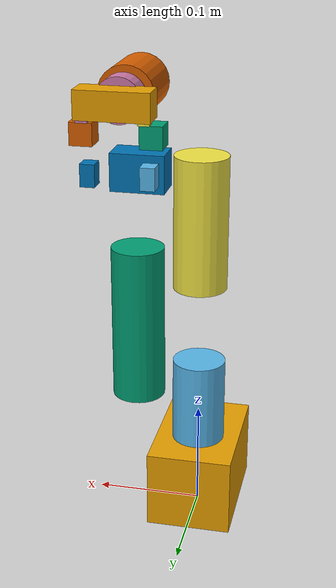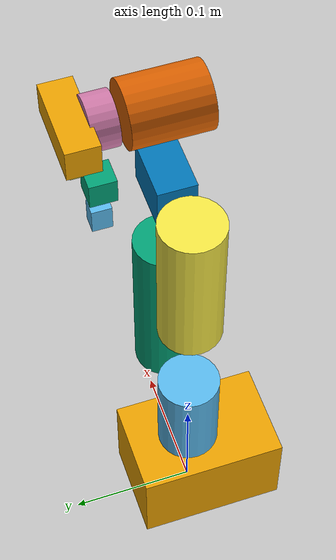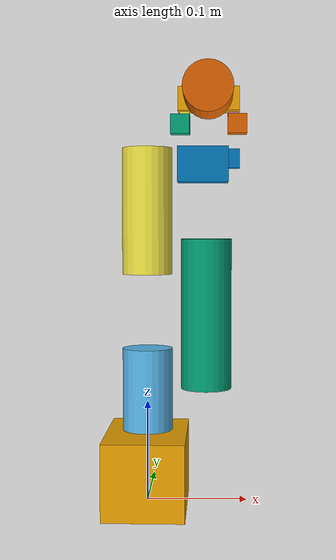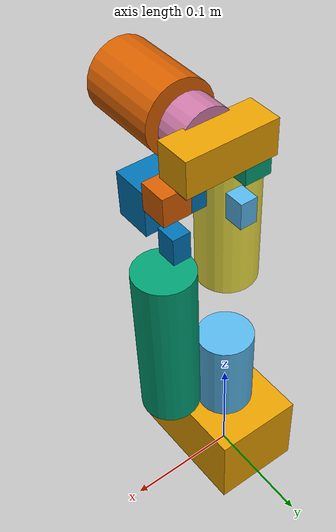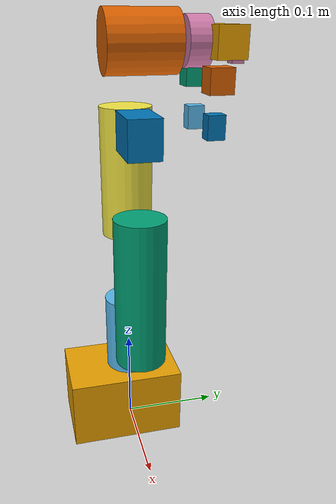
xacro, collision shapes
<?xml version="1.0"?>
<robot xmlns:xacro="http://www.ros.org/wiki/xacro" name="mycobot_280">
    <xacro:arg name="initial_positions_file" default="initial_positions.yaml" />

    <!-- Import mycobot_280 urdf file -->
    <xacro:include filename="$(find mycobot_description)/urdf/mycobot_280_wrapper.xacro" />

    <!-- Import control_xacro -->
    <xacro:include filename="mycobot_280.ros2_control.xacro" />

    <xacro:mycobot_280_ros2_control name="GazeboSystem" initial_positions_file="$(arg initial_positions_file)"/>

    <!-- Gazebo Classic Plugin for ros2_control -->
    <gazebo>
        <plugin filename="libgazebo_ros2_control.so" name="gazebo_ros2_control">
            <parameters>$(find mycobot_moveit_config_new)/config/ros2_controllers.yaml</parameters>
        </plugin>
    </gazebo>

</robot>

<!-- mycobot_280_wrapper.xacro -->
<robot xmlns:xacro="http://www.ros.org/wiki/xacro" name="mycobot_280">

  <xacro:include filename="mycobot_280_urdf.xacro"/>
  <xacro:include filename="/home/anish/ros2_robot_ws/src/mycobot_description/urdf/adaptive_gripper.urdf.xacro"/>

    <xacro:adaptive_gripper parent="flange" prefix="">
  <origin xyz="0 0 0.02" rpy="0 0 0"/>
</xacro:adaptive_gripper>

  <link name="base_link"/>

  <xacro:mycobot_280_arm
    base_link="base_link"
    flange_link="flange"
    prefix="">
    <origin xyz="0 0 0" rpy="0 0 0"/>
  </xacro:mycobot_280_arm>

</robot>

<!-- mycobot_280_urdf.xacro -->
<robot name="mycobot_280" xmlns:xacro="http://www.ros.org/wiki/xacro">

  <xacro:property name="joint_effort" value="56.0"/>
  <xacro:property name="joint_velocity" value="2.792527"/>
  <xacro:property name="joint_damping" value="0.0"/>
  <xacro:property name="joint_friction" value="0.0"/>

  <xacro:property name="link1_mass" value="0.12"/>
  <xacro:property name="link2_mass" value="0.19"/>
  <xacro:property name="link3_mass" value="0.16"/>
  <xacro:property name="link4_mass" value="0.124"/>
  <xacro:property name="link5_mass" value="0.11"/>
  <xacro:property name="link6_mass" value="0.0739"/>
  <xacro:property name="flange_mass" value="0.035"/>

  <xacro:macro name="link_inertial" params="mass ixx iyy izz">
    <inertial>
      <origin xyz="0 0 0.0" rpy="0 0 0"/>
      <mass value="${mass}"/>
      <inertia
        ixx="${ixx}" ixy="0.0" ixz="0.0"
        iyy="${iyy}" iyz="0.0"
        izz="${izz}"/>
    </inertial>
  </xacro:macro>

  <xacro:macro name="material_visual" params="ref_link ambient diffuse specular">
    <gazebo reference="${ref_link}">
      <visual>
        <material>
          <ambient>${ambient}</ambient>
          <diffuse>${diffuse}</diffuse>
          <specular>${specular}</specular>
        </material>
      </visual>
    </gazebo>
  </xacro:macro>

  <xacro:macro name="mycobot_280_arm" params="base_link flange_link prefix *origin">

    <link name="${prefix}link1">
      <xacro:link_inertial mass="${link1_mass}" ixx="0.000148" iyy="0.000148" izz="0.000096"/>
      <visual>
        <geometry>
          <mesh filename="package://mycobot_description/meshes/mycobot_280/visual/link1.dae"/>
        </geometry>
        <origin xyz="0.0 0 0" rpy="0 0 ${-pi/2}"/>
      </visual>
      <collision>
        <geometry>
          <box size="0.08 0.12 0.075"/>
        </geometry>
        <origin xyz="0.0 -0.01 0.034" rpy="0 0 0"/>
      </collision>
    </link>

    <link name="${prefix}link2">
      <xacro:link_inertial mass="${link2_mass}" ixx="0.000148" iyy="0.000148" izz="0.000096"/>
      <visual>
        <geometry>
          <mesh filename="package://mycobot_description/meshes/mycobot_280/visual/link2.dae"/>
        </geometry>
        <origin xyz="0.0 0 -0.06096" rpy="0 0 ${-pi/2}"/>
      </visual>
      <collision>
        <geometry>
          <cylinder radius="0.025" length="0.085"/>
        </geometry>
        <origin xyz="0.0 0 -0.02" rpy="0 0 ${-pi/2}"/>
      </collision>
    </link>

    <link name="${prefix}link3">
      <xacro:link_inertial mass="${link3_mass}" ixx="0.000148" iyy="0.000148" izz="0.000096"/>
      <visual>
        <geometry>
          <mesh filename="package://mycobot_description/meshes/mycobot_280/visual/link3.dae"/>
        </geometry>
        <origin xyz="0.0 0 0.03256" rpy="0 ${-pi/2} 0"/>
      </visual>
      <collision>
        <geometry>
          <cylinder radius="0.025" length="0.15"/>
        </geometry>
        <origin xyz="-0.058 0 0.059" rpy="0 ${-pi/2} 0"/>
      </collision>
    </link>

    <link name="${prefix}link4">
      <xacro:link_inertial mass="${link4_mass}" ixx="0.000103" iyy="0.000103" izz="0.000096"/>
      <visual>
        <geometry>
          <mesh filename="package://mycobot_description/meshes/mycobot_280/visual/link4.dae"/>
        </geometry>
        <origin xyz="0.0 0 0.03056" rpy="0 ${-pi/2} 0"/>
      </visual>
      <collision>
        <geometry>
          <cylinder radius="0.025" length="0.125"/>
        </geometry>
        <origin xyz="-0.05 0 0.0" rpy="0 ${-pi/2} 0"/>
      </collision>
    </link>

    <link name="${prefix}link5">
      <xacro:link_inertial mass="${link5_mass}" ixx="0.000103" iyy="0.000103" izz="0.000096"/>
      <visual>
        <geometry>
          <mesh filename="package://mycobot_description/meshes/mycobot_280/visual/link5.dae"/>
        </geometry>
        <origin xyz="0.0 0 -0.03356" rpy="${-pi/2} 0 0"/>
      </visual>
      <collision>
        <geometry>
          <box size="0.03 0.035 0.05"/>
        </geometry>
        <origin xyz="0.0 0 -0.005" rpy="0 0.0 0"/>
      </collision>
    </link>

    <link name="${prefix}link6">
      <xacro:link_inertial mass="${link6_mass}" ixx="0.00006649" iyy="0.00006649" izz="0.000096"/>
      <visual>
        <geometry>
          <mesh filename="package://mycobot_description/meshes/mycobot_280/visual/link6.dae"/>
        </geometry>
        <origin xyz="0 0.00 -0.038" rpy="0 0 0"/>
      </visual>
      <collision>
        <geometry>
          <cylinder radius="0.025" length="0.06"/>
        </geometry>
        <origin xyz="0 0.00 0.0" rpy="${-pi/2} 0 0"/>
      </collision>
    </link>

    <link name="${prefix}${flange_link}">
      <xacro:link_inertial mass="${flange_mass}" ixx="0.0000149" iyy="0.0000149" izz="0.0000196"/>
      <visual>
        <geometry>
          <mesh filename="package://mycobot_description/meshes/mycobot_280/visual/link7.dae"/>
        </geometry>
        <origin xyz="0.0 0 -0.012" rpy="0 0 0"/>
      </visual>
      <collision>
        <geometry>
          <cylinder radius="0.02" length="0.02"/>
        </geometry>
        <origin xyz="0 0.00 0.0" rpy="0 0 0"/>
      </collision>
    </link>

    <joint name="${prefix}${base_link}_to_${prefix}link1" type="fixed">
      <parent link="${prefix}${base_link}"/>
      <child link="${prefix}link1"/>
      <xacro:insert_block name="origin"/>
    </joint>

    <joint name="${prefix}link1_to_${prefix}link2" type="revolute">
      <axis xyz="0 0 1"/>
      <limit effort="${joint_effort}" lower="-3.14159" upper="3.14159" velocity="${joint_velocity}"/>
      <parent link="${prefix}link1"/>
      <child link="${prefix}link2"/>
      <origin xyz="0 0 0.13156" rpy="0 0 ${pi/2}"/>
      <dynamics damping="${joint_damping}" friction="${joint_friction}"/>
    </joint>

    <joint name="${prefix}link2_to_${prefix}link3" type="revolute">
      <axis xyz="0 0 1"/>
      <limit effort="${joint_effort}" lower="-2.879793" upper="2.879793" velocity="${joint_velocity}"/>
      <parent link="${prefix}link2"/>
      <child link="${prefix}link3"/>
      <origin xyz="0 0 -0.001" rpy="0 ${pi/2} ${-pi/2}"/>
      <dynamics damping="${joint_damping}" friction="${joint_friction}"/>
    </joint>

    <joint name="${prefix}link3_to_${prefix}link4" type="revolute">
      <axis xyz="0 0 1"/>
      <limit effort="${joint_effort}" lower="-2.879793" upper="2.879793" velocity="${joint_velocity}"/>
      <parent link="${prefix}link3"/>
      <child link="${prefix}link4"/>
      <origin xyz="-0.1104 0 0" rpy="0 0 0"/>
      <dynamics damping="${joint_damping}" friction="${joint_friction}"/>
    </joint>

    <joint name="${prefix}link4_to_${prefix}link5" type="revolute">
      <axis xyz="0 0 1"/>
      <limit effort="${joint_effort}" lower="-2.879793" upper="2.879793" velocity="${joint_velocity}"/>
      <parent link="${prefix}link4"/>
      <child link="${prefix}link5"/>
      <origin xyz="-0.096 0 0.06062" rpy="0 0 ${-pi/2}"/>
      <dynamics damping="${joint_damping}" friction="${joint_friction}"/>
    </joint>

    <joint name="${prefix}link5_to_${prefix}link6" type="revolute">
      <axis xyz="0 0 1"/>
      <limit effort="${joint_effort}" lower="-2.879793" upper="2.879793" velocity="${joint_velocity}"/>
      <parent link="${prefix}link5"/>
      <child link="${prefix}link6"/>
      <origin xyz="0 -0.07318 0" rpy="${pi/2} ${-pi/2} 0"/>
      <dynamics damping="${joint_damping}" friction="${joint_friction}"/>
    </joint>

    <joint name="${prefix}link6_to_${prefix}${flange_link}" type="revolute">
      <axis xyz="0 0 1"/>
      <limit effort="${joint_effort}" lower="-3.05" upper="3.05" velocity="${joint_velocity}"/>
      <parent link="${prefix}link6"/>
      <child link="${prefix}${flange_link}"/>
      <origin xyz="0 0.0456 0" rpy="${-pi/2} 0 0"/>
      <dynamics damping="${joint_damping}" friction="${joint_friction}"/>
    </joint>

    <xacro:material_visual ref_link="${prefix}link1" ambient="0.5 0.5 0.5 1" diffuse="0.5 0.5 0.5 1" specular="0.5 0.5 0.5 1"/>
    <xacro:material_visual ref_link="${prefix}link2" ambient="1 1 1 1" diffuse="1 1 1 1" specular="1 1 1 1"/>
    <xacro:material_visual ref_link="${prefix}link3" ambient="1 1 1 1" diffuse="1 1 1 1" specular="1 1 1 1"/>
    <xacro:material_visual ref_link="${prefix}link4" ambient="1 1 1 1" diffuse="1 1 1 1" specular="1 1 1 1"/>
    <xacro:material_visual ref_link="${prefix}link5" ambient="1 1 1 1" diffuse="1 1 1 1" specular="1 1 1 1"/>
    <xacro:material_visual ref_link="${prefix}link6" ambient="1 1 1 1" diffuse="1 1 1 1" specular="1 1 1 1"/>
    <xacro:material_visual ref_link="${prefix}${flange_link}" ambient="0.5 0.5 0.5 1" diffuse="0.5 0.5 0.5 1" specular="0.5 0.5 0.5 1"/>

  </xacro:macro>
</robot>

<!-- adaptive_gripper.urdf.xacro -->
<robot xmlns:xacro="http://www.ros.org/wiki/xacro">

  <xacro:property name="joint_effort" value="56.0"/>
  <xacro:property name="joint_velocity" value="2.792527"/>
  <xacro:property name="joint_damping" value="0.0"/>
  <xacro:property name="joint_friction" value="0.0"/>

  <xacro:property name="gripper_link_mass" value="0.007"/>
  <xacro:property name="gripper_link_ixx" value="1e-6"/>
  <xacro:property name="gripper_link_iyy" value="1e-6"/>
  <xacro:property name="gripper_link_izz" value="1e-6"/>

  <xacro:macro name="gripper_link_inertial">
    <inertial>
      <origin xyz="0 0 0.0" rpy="0 0 0"/>
      <mass value="${gripper_link_mass}"/>
      <inertia
        ixx="${gripper_link_ixx}" ixy="0.0" ixz="0.0"
        iyy="${gripper_link_iyy}" iyz="0.0"
        izz="${gripper_link_izz}"/>
    </inertial>
  </xacro:macro>

  <xacro:macro name="adaptive_gripper" params="parent prefix *origin">

    <link name="${prefix}gripper_base">
      <inertial>
        <origin xyz="0 0 0.0" rpy="0 0 0"/>
        <mass value="0.07"/>
        <inertia
          ixx="0.000010725" ixy="0.0" ixz="0.0"
          iyy="0.000014392" iyz="0.0"
          izz="0.000018517"/>
      </inertial>
      <visual>
        <geometry>
          <mesh filename="package://mycobot_description/meshes/adaptive_gripper/visual/gripper_base.dae"/>
        </geometry>
        <origin xyz="0.0 0.0 -0.012" rpy="0 0 0"/>
      </visual>
      <collision>
        <geometry>
          <box size="0.065 0.025 0.025"/>
        </geometry>
        <origin xyz="0.0 0.0 0.0" rpy="0 0 0"/>
      </collision>
    </link>

    <joint name="${prefix}${parent}_to_${prefix}gripper_base" type="fixed">
      <parent link="${prefix}${parent}"/>
      <child link="${prefix}gripper_base"/>
      <xacro:insert_block name="origin"/>
    </joint>

    <link name="${prefix}gripper_left1">
      <xacro:gripper_link_inertial/>
      <visual>
        <geometry>
          <mesh filename="package://mycobot_description/meshes/adaptive_gripper/visual/gripper_left1.dae"/>
        </geometry>
        <origin xyz="0.039 -0.0133 -0.012" rpy="0 0 0"/>
      </visual>
      <collision>
        <geometry>
          <box size="0.013 0.02 0.015"/>
        </geometry>
        <origin xyz="0.013 0.042 -0.010" rpy="0 0 0"/>
      </collision>
    </link>

    <link name="${prefix}gripper_left2">
      <xacro:gripper_link_inertial/>
      <visual>
        <geometry>
          <mesh filename="package://mycobot_description/meshes/adaptive_gripper/visual/gripper_left2.dae"/>
        </geometry>
        <origin xyz="0.005 -0.0195 -0.012" rpy="0 0 0"/>
      </visual>
      <collision>
        <geometry>
          <box size="0.02 0.02 0.02"/>
        </geometry>
        <origin xyz="-0.025 0.0 -0.010" rpy="0 0 0"/>
      </collision>
    </link>

    <link name="${prefix}gripper_left3">
      <xacro:gripper_link_inertial/>
      <visual>
        <geometry>
          <mesh filename="package://mycobot_description/meshes/adaptive_gripper/visual/gripper_left3.dae"/>
        </geometry>
        <origin xyz="0.012 0.0025 -0.012" rpy="0 0 0"/>
      </visual>
      <collision>
        <geometry>
          <box size="0.01 0.01 0.01"/>
        </geometry>
        <origin xyz="-0.014 0.005 0.005" rpy="0 0 0"/>
      </collision>
    </link>

    <link name="${prefix}gripper_right1">
      <xacro:gripper_link_inertial/>
      <visual>
        <geometry>
          <mesh filename="package://mycobot_description/meshes/adaptive_gripper/visual/gripper_right1.dae"/>
        </geometry>
        <origin xyz="-0.039 -0.0133 -0.012" rpy="0 0 0"/>
      </visual>
      <collision>
        <geometry>
          <box size="0.013 0.02 0.015"/>
        </geometry>
        <origin xyz="-0.013 0.042 -0.010" rpy="0 0 0"/>
      </collision>
    </link>

    <link name="${prefix}gripper_right2">
      <xacro:gripper_link_inertial/>
      <visual>
        <geometry>
          <mesh filename="package://mycobot_description/meshes/adaptive_gripper/visual/gripper_right2.dae"/>
        </geometry>
        <origin xyz="-0.005 -0.0195 -0.012" rpy="0 0 0"/>
      </visual>
      <collision>
        <geometry>
          <box size="0.02 0.02 0.02"/>
        </geometry>
        <origin xyz="0.025 0.0 -0.010" rpy="0 0 0"/>
      </collision>
    </link>

    <link name="${prefix}gripper_right3">
      <xacro:gripper_link_inertial/>
      <visual>
        <geometry>
          <mesh filename="package://mycobot_description/meshes/adaptive_gripper/visual/gripper_right3.dae"/>
        </geometry>
        <origin xyz="-0.012 0.0025 -0.012" rpy="0 0 0"/>
      </visual>
      <collision>
        <geometry>
          <box size="0.01 0.01 0.01"/>
        </geometry>
        <origin xyz="0.014 0.005 0.005" rpy="0 0 0"/>
      </collision>
    </link>

    <joint name="${prefix}gripper_controller" type="revolute">
      <axis xyz="0 0 1"/>
      <limit effort="${joint_effort}" lower="-0.7" upper="0.15" velocity="${joint_velocity}"/>
      <parent link="${prefix}gripper_base"/>
      <child link="${prefix}gripper_left3"/>
      <origin xyz="-0.012 0.005 0" rpy="0 0 0"/>
      <dynamics damping="${joint_damping}" friction="${joint_friction}"/>
    </joint>

    <joint name="${prefix}gripper_base_to_${prefix}gripper_left2" type="revolute">
      <axis xyz="0 0 1"/>
      <limit effort="${joint_effort}" lower="-0.8" upper="0.5" velocity="${joint_velocity}"/>
      <parent link="${prefix}gripper_base"/>
      <child link="${prefix}gripper_left2"/>
      <origin xyz="-0.005 0.027 0" rpy="0 0 0"/>
      <mimic joint="${prefix}gripper_controller" multiplier="1.0" offset="0"/>
      <dynamics damping="${joint_damping}" friction="${joint_friction}"/>
    </joint>

    <joint name="${prefix}gripper_left3_to_${prefix}gripper_left1" type="revolute">
      <axis xyz="0 0 1"/>
      <limit effort="${joint_effort}" lower="-0.5" upper="0.5" velocity="${joint_velocity}"/>
      <parent link="${prefix}gripper_left3"/>
      <child link="${prefix}gripper_left1"/>
      <origin xyz="-0.027 0.016 0" rpy="0 0 0"/>
      <mimic joint="${prefix}gripper_controller" multiplier="-1.0" offset="0"/>
      <dynamics damping="${joint_damping}" friction="${joint_friction}"/>
    </joint>

    <joint name="${prefix}gripper_base_to_${prefix}gripper_right3" type="revolute">
      <axis xyz="0 0 1"/>
      <limit effort="${joint_effort}" lower="-0.15" upper="0.7" velocity="${joint_velocity}"/>
      <parent link="${prefix}gripper_base"/>
      <child link="${prefix}gripper_right3"/>
      <origin xyz="0.012 0.005 0" rpy="0 0 0"/>
      <mimic joint="${prefix}gripper_controller" multiplier="-1.0" offset="0"/>
      <dynamics damping="${joint_damping}" friction="${joint_friction}"/>
    </joint>

    <joint name="${prefix}gripper_base_to_${prefix}gripper_right2" type="revolute">
      <axis xyz="0 0 1"/>
      <limit effort="${joint_effort}" lower="-0.5" upper="0.8" velocity="${joint_velocity}"/>
      <parent link="${prefix}gripper_base"/>
      <child link="${prefix}gripper_right2"/>
      <origin xyz="0.005 0.027 0" rpy="0 0 0"/>
      <mimic joint="${prefix}gripper_controller" multiplier="-1.0" offset="0"/>
      <dynamics damping="${joint_damping}" friction="${joint_friction}"/>
    </joint>

    <joint name="${prefix}gripper_right3_to_${prefix}gripper_right1" type="revolute">
      <axis xyz="0 0 1"/>
      <limit effort="${joint_effort}" lower="-0.5" upper="0.5" velocity="${joint_velocity}"/>
      <parent link="${prefix}gripper_right3"/>
      <child link="${prefix}gripper_right1"/>
      <origin xyz="0.027 0.016 0" rpy="0 0 0"/>
      <mimic joint="${prefix}gripper_controller" multiplier="1.0" offset="0"/>
      <dynamics damping="${joint_damping}" friction="${joint_friction}"/>
    </joint>

    <gazebo reference="${prefix}gripper_base">
      <visual>
        <material>
          <ambient>1 1 1 1</ambient>
          <diffuse>1 1 1 1</diffuse>
          <specular>1 1 1 1</specular>
        </material>
      </visual>
    </gazebo>

  </xacro:macro>
</robot>
